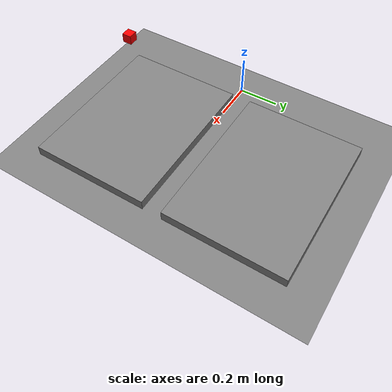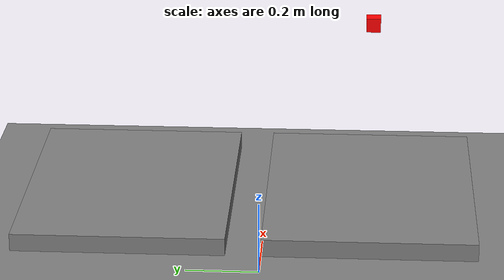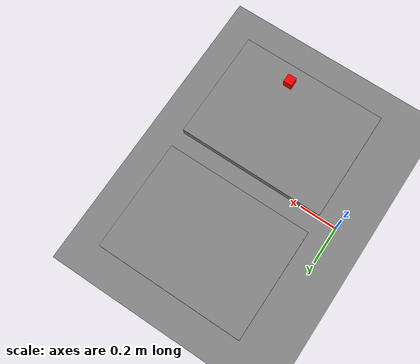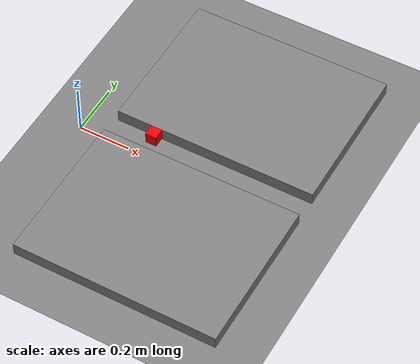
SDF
<?xml version="1.0" ?>
<sdf version="1.8">
  <world name="pick_and_place">
    <physics name="default" type="ode">
      <max_step_size>0.001</max_step_size>
      <real_time_factor>1.0</real_time_factor>
      <real_time_update_rate>1000</real_time_update_rate>
    </physics>
    <plugin filename="gz-sim-physics-system" name="gz::sim::systems::Physics"/>
    <plugin filename="gz-sim-sensors-system" name="gz::sim::systems::Sensors">
      <render_engine>ogre2</render_engine>
    </plugin>
    <plugin filename="gz-sim-user-commands-system" name="gz::sim::systems::UserCommands"/>
    <plugin filename="gz-sim-scene-broadcaster-system" name="gz::sim::systems::SceneBroadcaster"/>
    <scene>
      <ambient>0.4 0.4 0.4</ambient>
      <background>0.7 0.7 0.7</background>
      <shadows>false</shadows>
    </scene>

    <light name="sun" type="directional">
      <pose>0 0 10 0 0 0</pose>
      <diffuse>0.8 0.8 0.8 1</diffuse>
      <specular>0.2 0.2 0.2 1</specular>
      <direction>-0.5 0.1 -1</direction>
    </light>

    <model name="ground_plane">
      <static>true</static>
      <link name="link">
        <collision name="collision">
          <geometry>
            <plane>
              <normal>0 0 1</normal>
              <size>10 10</size>
            </plane>
          </geometry>
        </collision>
        <visual name="visual">
          <geometry>
            <plane>
              <normal>0 0 1</normal>
              <size>10 10</size>
            </plane>
          </geometry>
          <material>
            <ambient>0.3 0.3 0.3 1</ambient>
            <diffuse>0.5 0.5 0.5 1</diffuse>
          </material>
        </visual>
      </link>
    </model>

    <model name="table">
      <pose>0.5 -0.3 0 0 0 0</pose>
      <link name="link">
        <collision name="collision">
          <geometry>
            <box>
              <size>0.8 0.6 0.05</size>
            </box>
          </geometry>
        </collision>
        <visual name="visual">
          <geometry>
            <box>
              <size>0.8 0.6 0.05</size>
            </box>
          </geometry>
          <material>
            <ambient>0.3 0.3 0.3 1</ambient>
            <diffuse>0.5 0.5 0.5 1</diffuse>
          </material>
        </visual>
        <pose>0 0 0.025 0 0 0</pose>
        <inertial>
          <mass>50</mass>
          <inertia>
            <ixx>1</ixx><ixy>0</ixy><ixz>0</ixz>
            <iyy>1</iyy><iyz>0</iyz>
            <izz>1</izz>
          </inertia>
        </inertial>
      </link>
    </model>

    <model name="table2">
      <pose>0.5 0.4 0 0 0 0</pose>
      <link name="link">
        <collision name="collision">
          <geometry>
            <box>
              <size>0.8 0.6 0.05</size>
            </box>
          </geometry>
        </collision>
        <visual name="visual">
          <geometry>
            <box>
              <size>0.8 0.6 0.05</size>
            </box>
          </geometry>
          <material>
            <ambient>0.3 0.3 0.3 1</ambient>
            <diffuse>0.5 0.5 0.5 1</diffuse>
          </material>
        </visual>
        <pose>0 0 0.025 0 0 0</pose>
        <inertial>
          <mass>50</mass>
          <inertia>
            <ixx>1</ixx><ixy>0</ixy><ixz>0</ixz>
            <iyy>1</iyy><iyz>0</iyz>
            <izz>1</izz>
          </inertia>
        </inertial>
      </link>
    </model>

    <model name="box">
      <pose>0.5 -0.3 0.55 0 0 0</pose>
      <link name="link">
        <collision name="collision">
          <geometry>
            <box>
              <size>0.04 0.04 0.04</size>
            </box>
          </geometry>
        </collision>
        <visual name="visual">
          <geometry>
            <box>
              <size>0.04 0.04 0.04</size>
            </box>
          </geometry>
          <material>
            <ambient>1 0 0 1</ambient>
            <diffuse>1 0 0 1</diffuse>
          </material>
        </visual>
        <inertial>
          <mass>0.05</mass>
          <inertia>
            <ixx>1e-5</ixx><ixy>0</ixy><ixz>0</ixz>
            <iyy>1e-5</iyy><iyz>0</iyz>
            <izz>1e-5</izz>
          </inertia>
        </inertial>
      </link>
    </model>

  </world>
</sdf>
